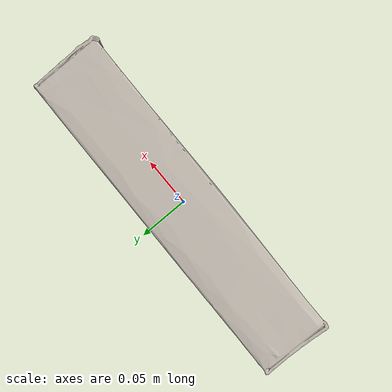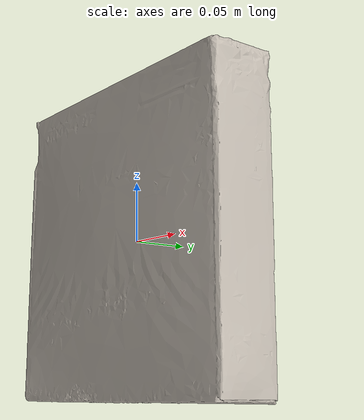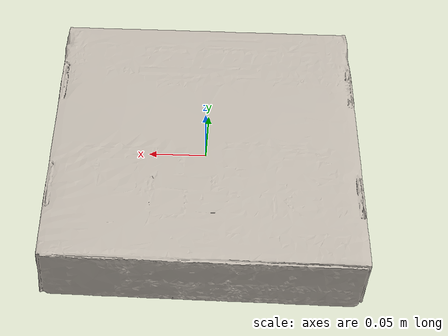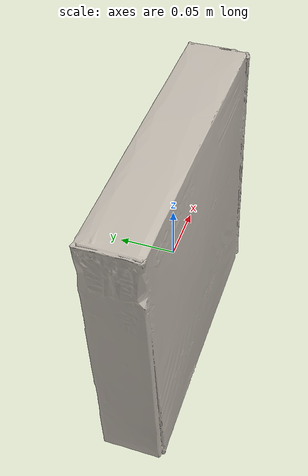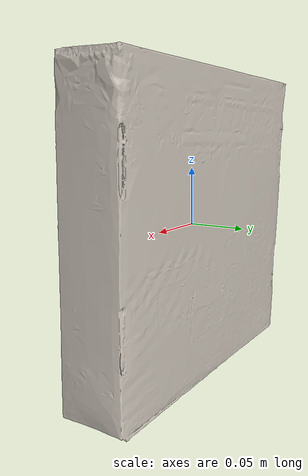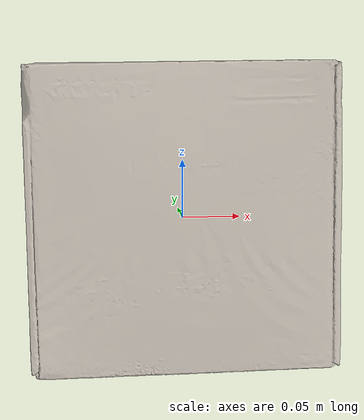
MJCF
<mujoco model="obj">
  <default>
    <default class="visual">
      <geom group="2" type="mesh" contype="0" conaffinity="0"/>
    </default>
    <default class="collision">
      <geom group="3" type="mesh"/>
    </default>
  </default>
  <asset>
    <texture type="2d" name="img0" file="img0.png"/>
    <material name="material_0" texture="img0" specular="0.0" shininess="0.0"/>
    <mesh file="00.obj"/>
  </asset>
  <worldbody>
    <body name="obj">
      <joint name="obj_jnt" type="free"/>
      <geom material="material_0" mesh="00" class="visual"/>
      <geom mesh="00" class="collision" mass="0.5"/>
    </body>
  </worldbody>
</mujoco>
